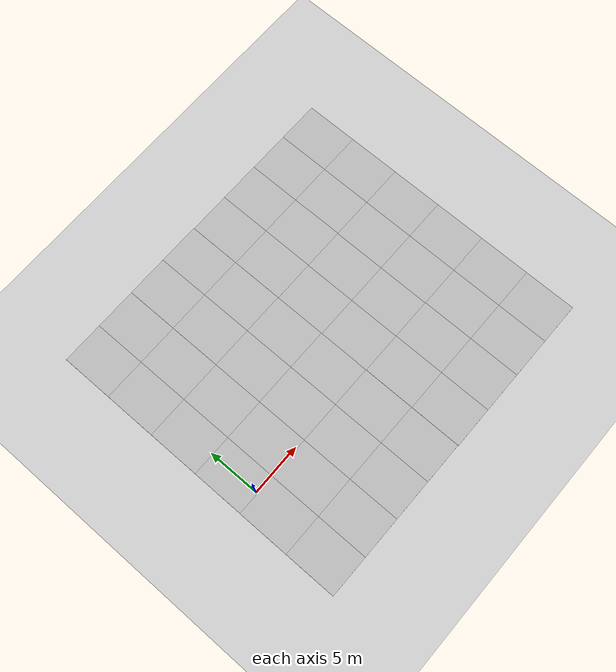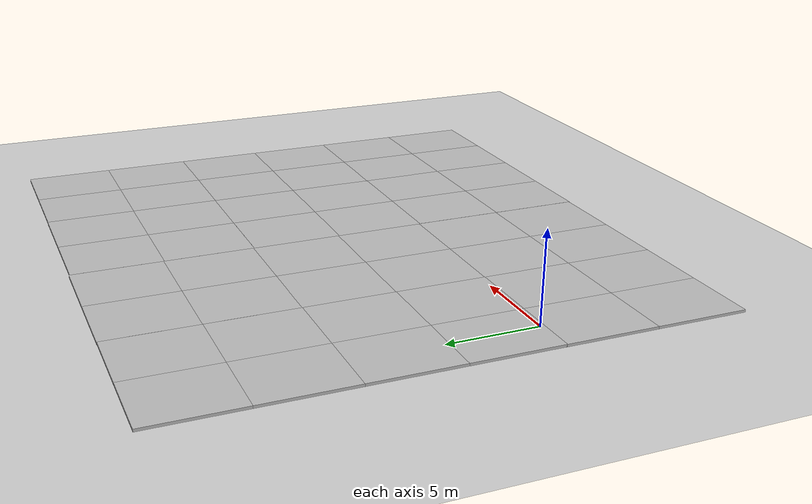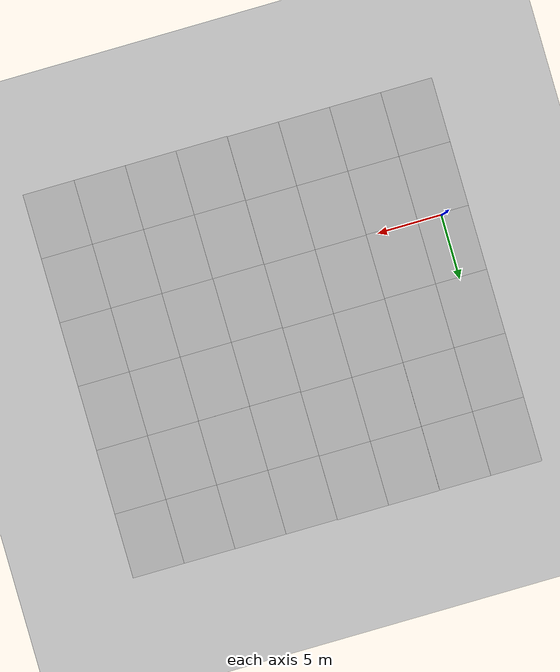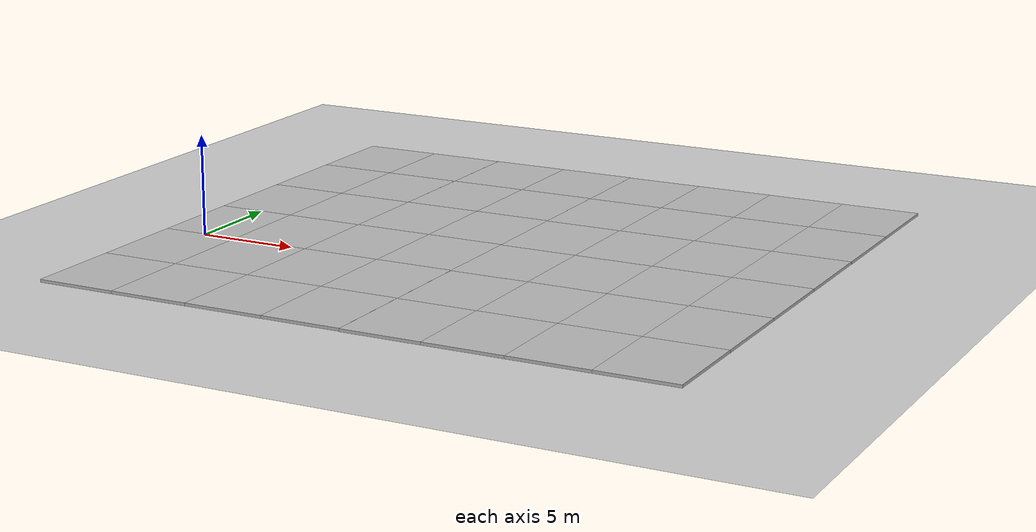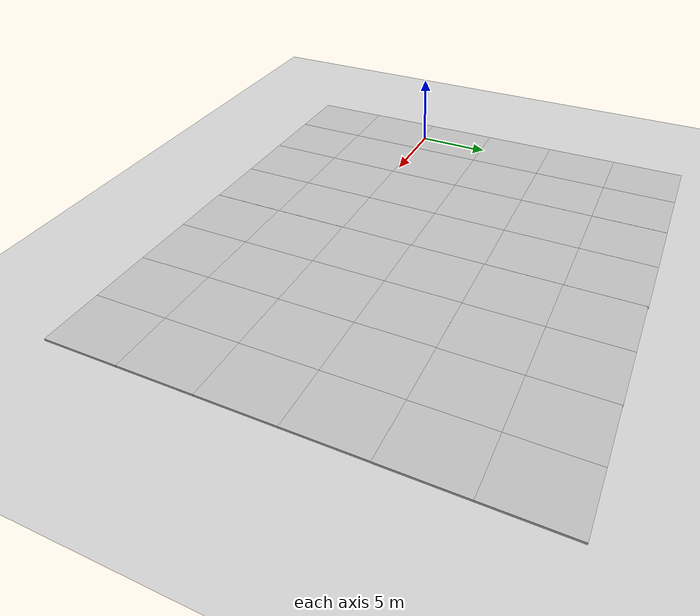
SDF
<sdf version="1.7">
 <world name="default">
  <light name="sun" type="directional">
   <pose>0 0 10 0 -0 0</pose>
   <diffuse>0.8 0.8 0.8 1</diffuse>
   <specular>0.1 0.1 0.1 1</specular>
   <attenuation>
    <range>1000</range>
    <constant>0.9</constant>
    <linear>0.01</linear>
    <quadratic>0.001</quadratic>
   </attenuation>
   <direction>-0.5 0.5 -1</direction>
   <spot><inner_angle>0</inner_angle><outer_angle>0</outer_angle><falloff>0</falloff></spot>
  </light>
  <gravity>0 0 -9.8</gravity>
  <magnetic_field>6e-06 2.3e-05 -4.2e-05</magnetic_field>
  <atmosphere type="adiabatic"/>
  <physics name="default_physics" default="0" type="ode">
   <max_step_size>0.001</max_step_size>
   <real_time_factor>1</real_time_factor>
   <real_time_update_rate>1000</real_time_update_rate>
  </physics>
  <scene><ambient>0.4 0.4 0.4 1</ambient><background>0.7 0.7 0.7 1</background><shadows>1</shadows></scene>
  <spherical_coordinates>
   <surface_model>EARTH_WGS84</surface_model>
   <latitude_deg>0</latitude_deg>
   <longitude_deg>0</longitude_deg>
   <elevation>0</elevation>
   <heading_deg>0</heading_deg>
  </spherical_coordinates>
  <model name="mud_box">
   <static>1</static>
   <link name="link">
    <collision name="collision"><geometry><box><size>8 10 0.2</size></box></geometry></collision>
    <visual name="visual_1">
     <pose>-2 2.5 0 0 -0 0</pose>
     <cast_shadows>0</cast_shadows>
     <geometry><box><size>4 5 0.2</size></box></geometry>
     <material>
      <script>
       <uri>model://mud_box/materials/scripts</uri>
       <uri>model://mud_box/materials/textures</uri>
       <name>vrc/mud</name>
      </script>
     </material>
    </visual>
    <visual name="visual_2">
     <pose>2 2.5 0 0 -0 0</pose>
     <cast_shadows>0</cast_shadows>
     <geometry><box><size>4 5 0.2</size></box></geometry>
     <material>
      <script>
       <uri>model://mud_box/materials/scripts</uri>
       <uri>model://mud_box/materials/textures</uri>
       <name>vrc/mud</name>
      </script>
     </material>
    </visual>
    <visual name="visual_3">
     <pose>2 -2.5 0 0 -0 0</pose>
     <cast_shadows>0</cast_shadows>
     <geometry><box><size>4 5 0.2</size></box></geometry>
     <material>
      <script>
       <uri>model://mud_box/materials/scripts</uri>
       <uri>model://mud_box/materials/textures</uri>
       <name>vrc/mud</name>
      </script>
     </material>
    </visual>
    <visual name="visual_4">
     <pose>-2 -2.5 0 0 -0 0</pose>
     <cast_shadows>0</cast_shadows>
     <geometry><box><size>4 5 0.2</size></box></geometry>
     <material>
      <script>
       <uri>model://mud_box/materials/scripts</uri>
       <uri>model://mud_box/materials/textures</uri>
       <name>vrc/mud</name>
      </script>
     </material>
    </visual>
   </link>
   <pose>9.86832 14.8407 0 0 -0 0</pose>
  </model>
  <model name="mud_box_0">
   <static>1</static>
   <link name="link">
    <collision name="collision"><geometry><box><size>8 10 0.2</size></box></geometry></collision>
    <visual name="visual_1">
     <pose>-2 2.5 0 0 -0 0</pose>
     <cast_shadows>0</cast_shadows>
     <geometry><box><size>4 5 0.2</size></box></geometry>
     <material>
      <script>
       <uri>model://mud_box/materials/scripts</uri>
       <uri>model://mud_box/materials/textures</uri>
       <name>vrc/mud</name>
      </script>
     </material>
    </visual>
    <visual name="visual_2">
     <pose>2 2.5 0 0 -0 0</pose>
     <cast_shadows>0</cast_shadows>
     <geometry><box><size>4 5 0.2</size></box></geometry>
     <material>
      <script>
       <uri>model://mud_box/materials/scripts</uri>
       <uri>model://mud_box/materials/textures</uri>
       <name>vrc/mud</name>
      </script>
     </material>
    </visual>
    <visual name="visual_3">
     <pose>2 -2.5 0 0 -0 0</pose>
     <cast_shadows>0</cast_shadows>
     <geometry><box><size>4 5 0.2</size></box></geometry>
     <material>
      <script>
       <uri>model://mud_box/materials/scripts</uri>
       <uri>model://mud_box/materials/textures</uri>
       <name>vrc/mud</name>
      </script>
     </material>
    </visual>
    <visual name="visual_4">
     <pose>-2 -2.5 0 0 -0 0</pose>
     <cast_shadows>0</cast_shadows>
     <geometry><box><size>4 5 0.2</size></box></geometry>
     <material>
      <script>
       <uri>model://mud_box/materials/scripts</uri>
       <uri>model://mud_box/materials/textures</uri>
       <name>vrc/mud</name>
      </script>
     </material>
    </visual>
   </link>
   <pose>1.86767 4.83104 0 0 -0 0</pose>
  </model>
  <model name="mud_box_1">
   <static>1</static>
   <link name="link">
    <collision name="collision"><geometry><box><size>8 10 0.2</size></box></geometry></collision>
    <visual name="visual_1">
     <pose>-2 2.5 0 0 -0 0</pose>
     <cast_shadows>0</cast_shadows>
     <geometry><box><size>4 5 0.2</size></box></geometry>
     <material>
      <script>
       <uri>model://mud_box/materials/scripts</uri>
       <uri>model://mud_box/materials/textures</uri>
       <name>vrc/mud</name>
      </script>
     </material>
    </visual>
    <visual name="visual_2">
     <pose>2 2.5 0 0 -0 0</pose>
     <cast_shadows>0</cast_shadows>
     <geometry><box><size>4 5 0.2</size></box></geometry>
     <material>
      <script>
       <uri>model://mud_box/materials/scripts</uri>
       <uri>model://mud_box/materials/textures</uri>
       <name>vrc/mud</name>
      </script>
     </material>
    </visual>
    <visual name="visual_3">
     <pose>2 -2.5 0 0 -0 0</pose>
     <cast_shadows>0</cast_shadows>
     <geometry><box><size>4 5 0.2</size></box></geometry>
     <material>
      <script>
       <uri>model://mud_box/materials/scripts</uri>
       <uri>model://mud_box/materials/textures</uri>
       <name>vrc/mud</name>
      </script>
     </material>
    </visual>
    <visual name="visual_4">
     <pose>-2 -2.5 0 0 -0 0</pose>
     <cast_shadows>0</cast_shadows>
     <geometry><box><size>4 5 0.2</size></box></geometry>
     <material>
      <script>
       <uri>model://mud_box/materials/scripts</uri>
       <uri>model://mud_box/materials/textures</uri>
       <name>vrc/mud</name>
      </script>
     </material>
    </visual>
   </link>
   <pose>25.8304 -5.18145 0 0 -0 0</pose>
  </model>
  <model name="mud_box_2">
   <static>1</static>
   <link name="link">
    <collision name="collision"><geometry><box><size>8 10 0.2</size></box></geometry></collision>
    <visual name="visual_1">
     <pose>-2 2.5 0 0 -0 0</pose>
     <cast_shadows>0</cast_shadows>
     <geometry><box><size>4 5 0.2</size></box></geometry>
     <material>
      <script>
       <uri>model://mud_box/materials/scripts</uri>
       <uri>model://mud_box/materials/textures</uri>
       <name>vrc/mud</name>
      </script>
     </material>
    </visual>
    <visual name="visual_2">
     <pose>2 2.5 0 0 -0 0</pose>
     <cast_shadows>0</cast_shadows>
     <geometry><box><size>4 5 0.2</size></box></geometry>
     <material>
      <script>
       <uri>model://mud_box/materials/scripts</uri>
       <uri>model://mud_box/materials/textures</uri>
       <name>vrc/mud</name>
      </script>
     </material>
    </visual>
    <visual name="visual_3">
     <pose>2 -2.5 0 0 -0 0</pose>
     <cast_shadows>0</cast_shadows>
     <geometry><box><size>4 5 0.2</size></box></geometry>
     <material>
      <script>
       <uri>model://mud_box/materials/scripts</uri>
       <uri>model://mud_box/materials/textures</uri>
       <name>vrc/mud</name>
      </script>
     </material>
    </visual>
    <visual name="visual_4">
     <pose>-2 -2.5 0 0 -0 0</pose>
     <cast_shadows>0</cast_shadows>
     <geometry><box><size>4 5 0.2</size></box></geometry>
     <material>
      <script>
       <uri>model://mud_box/materials/scripts</uri>
       <uri>model://mud_box/materials/textures</uri>
       <name>vrc/mud</name>
      </script>
     </material>
    </visual>
   </link>
   <pose>1.85975 -5.14192 0 0 -0 0</pose>
  </model>
  <model name="mud_box_0_clone">
   <static>1</static>
   <link name="link">
    <collision name="collision"><geometry><box><size>8 10 0.2</size></box></geometry></collision>
    <visual name="visual_1">
     <pose>-2 2.5 0 0 -0 0</pose>
     <cast_shadows>0</cast_shadows>
     <geometry><box><size>4 5 0.2</size></box></geometry>
     <material>
      <script>
       <uri>model://mud_box/materials/scripts</uri>
       <uri>model://mud_box/materials/textures</uri>
       <name>vrc/mud</name>
      </script>
     </material>
    </visual>
    <visual name="visual_2">
     <pose>2 2.5 0 0 -0 0</pose>
     <cast_shadows>0</cast_shadows>
     <geometry><box><size>4 5 0.2</size></box></geometry>
     <material>
      <script>
       <uri>model://mud_box/materials/scripts</uri>
       <uri>model://mud_box/materials/textures</uri>
       <name>vrc/mud</name>
      </script>
     </material>
    </visual>
    <visual name="visual_3">
     <pose>2 -2.5 0 0 -0 0</pose>
     <cast_shadows>0</cast_shadows>
     <geometry><box><size>4 5 0.2</size></box></geometry>
     <material>
      <script>
       <uri>model://mud_box/materials/scripts</uri>
       <uri>model://mud_box/materials/textures</uri>
       <name>vrc/mud</name>
      </script>
     </material>
    </visual>
    <visual name="visual_4">
     <pose>-2 -2.5 0 0 -0 0</pose>
     <cast_shadows>0</cast_shadows>
     <geometry><box><size>4 5 0.2</size></box></geometry>
     <material>
      <script>
       <uri>model://mud_box/materials/scripts</uri>
       <uri>model://mud_box/materials/textures</uri>
       <name>vrc/mud</name>
      </script>
     </material>
    </visual>
   </link>
   <pose>9.85757 -5.14216 0 0 -0 0</pose>
  </model>
  <model name="mud_box_0_clone_clone">
   <static>1</static>
   <link name="link">
    <collision name="collision"><geometry><box><size>8 10 0.2</size></box></geometry></collision>
    <visual name="visual_1">
     <pose>-2 2.5 0 0 -0 0</pose>
     <cast_shadows>0</cast_shadows>
     <geometry><box><size>4 5 0.2</size></box></geometry>
     <material>
      <script>
       <uri>model://mud_box/materials/scripts</uri>
       <uri>model://mud_box/materials/textures</uri>
       <name>vrc/mud</name>
      </script>
     </material>
    </visual>
    <visual name="visual_2">
     <pose>2 2.5 0 0 -0 0</pose>
     <cast_shadows>0</cast_shadows>
     <geometry><box><size>4 5 0.2</size></box></geometry>
     <material>
      <script>
       <uri>model://mud_box/materials/scripts</uri>
       <uri>model://mud_box/materials/textures</uri>
       <name>vrc/mud</name>
      </script>
     </material>
    </visual>
    <visual name="visual_3">
     <pose>2 -2.5 0 0 -0 0</pose>
     <cast_shadows>0</cast_shadows>
     <geometry><box><size>4 5 0.2</size></box></geometry>
     <material>
      <script>
       <uri>model://mud_box/materials/scripts</uri>
       <uri>model://mud_box/materials/textures</uri>
       <name>vrc/mud</name>
      </script>
     </material>
    </visual>
    <visual name="visual_4">
     <pose>-2 -2.5 0 0 -0 0</pose>
     <cast_shadows>0</cast_shadows>
     <geometry><box><size>4 5 0.2</size></box></geometry>
     <material>
      <script>
       <uri>model://mud_box/materials/scripts</uri>
       <uri>model://mud_box/materials/textures</uri>
       <name>vrc/mud</name>
      </script>
     </material>
    </visual>
   </link>
   <pose>17.8643 -5.17973 0 0 -0 0</pose>
  </model>
  <model name="mud_box_0_clone_clone_0">
   <static>1</static>
   <link name="link">
    <collision name="collision"><geometry><box><size>8 10 0.2</size></box></geometry></collision>
    <visual name="visual_1">
     <pose>-2 2.5 0 0 -0 0</pose>
     <cast_shadows>0</cast_shadows>
     <geometry><box><size>4 5 0.2</size></box></geometry>
     <material>
      <script>
       <uri>model://mud_box/materials/scripts</uri>
       <uri>model://mud_box/materials/textures</uri>
       <name>vrc/mud</name>
      </script>
     </material>
    </visual>
    <visual name="visual_2">
     <pose>2 2.5 0 0 -0 0</pose>
     <cast_shadows>0</cast_shadows>
     <geometry><box><size>4 5 0.2</size></box></geometry>
     <material>
      <script>
       <uri>model://mud_box/materials/scripts</uri>
       <uri>model://mud_box/materials/textures</uri>
       <name>vrc/mud</name>
      </script>
     </material>
    </visual>
    <visual name="visual_3">
     <pose>2 -2.5 0 0 -0 0</pose>
     <cast_shadows>0</cast_shadows>
     <geometry><box><size>4 5 0.2</size></box></geometry>
     <material>
      <script>
       <uri>model://mud_box/materials/scripts</uri>
       <uri>model://mud_box/materials/textures</uri>
       <name>vrc/mud</name>
      </script>
     </material>
    </visual>
    <visual name="visual_4">
     <pose>-2 -2.5 0 0 -0 0</pose>
     <cast_shadows>0</cast_shadows>
     <geometry><box><size>4 5 0.2</size></box></geometry>
     <material>
      <script>
       <uri>model://mud_box/materials/scripts</uri>
       <uri>model://mud_box/materials/textures</uri>
       <name>vrc/mud</name>
      </script>
     </material>
    </visual>
   </link>
   <pose>17.8432 4.79546 0 0 -0 0</pose>
  </model>
  <model name="mud_box_0_clone_clone_1">
   <static>1</static>
   <link name="link">
    <collision name="collision"><geometry><box><size>8 10 0.2</size></box></geometry></collision>
    <visual name="visual_1">
     <pose>-2 2.5 0 0 -0 0</pose>
     <cast_shadows>0</cast_shadows>
     <geometry><box><size>4 5 0.2</size></box></geometry>
     <material>
      <script>
       <uri>model://mud_box/materials/scripts</uri>
       <uri>model://mud_box/materials/textures</uri>
       <name>vrc/mud</name>
      </script>
     </material>
    </visual>
    <visual name="visual_2">
     <pose>2 2.5 0 0 -0 0</pose>
     <cast_shadows>0</cast_shadows>
     <geometry><box><size>4 5 0.2</size></box></geometry>
     <material>
      <script>
       <uri>model://mud_box/materials/scripts</uri>
       <uri>model://mud_box/materials/textures</uri>
       <name>vrc/mud</name>
      </script>
     </material>
    </visual>
    <visual name="visual_3">
     <pose>2 -2.5 0 0 -0 0</pose>
     <cast_shadows>0</cast_shadows>
     <geometry><box><size>4 5 0.2</size></box></geometry>
     <material>
      <script>
       <uri>model://mud_box/materials/scripts</uri>
       <uri>model://mud_box/materials/textures</uri>
       <name>vrc/mud</name>
      </script>
     </material>
    </visual>
    <visual name="visual_4">
     <pose>-2 -2.5 0 0 -0 0</pose>
     <cast_shadows>0</cast_shadows>
     <geometry><box><size>4 5 0.2</size></box></geometry>
     <material>
      <script>
       <uri>model://mud_box/materials/scripts</uri>
       <uri>model://mud_box/materials/textures</uri>
       <name>vrc/mud</name>
      </script>
     </material>
    </visual>
   </link>
   <pose>25.8322 4.79818 0 0 -0 0</pose>
  </model>
  <model name="mud_box_0_clone_clone_2">
   <static>1</static>
   <link name="link">
    <collision name="collision"><geometry><box><size>8 10 0.2</size></box></geometry></collision>
    <visual name="visual_1">
     <pose>-2 2.5 0 0 -0 0</pose>
     <cast_shadows>0</cast_shadows>
     <geometry><box><size>4 5 0.2</size></box></geometry>
     <material>
      <script>
       <uri>model://mud_box/materials/scripts</uri>
       <uri>model://mud_box/materials/textures</uri>
       <name>vrc/mud</name>
      </script>
     </material>
    </visual>
    <visual name="visual_2">
     <pose>2 2.5 0 0 -0 0</pose>
     <cast_shadows>0</cast_shadows>
     <geometry><box><size>4 5 0.2</size></box></geometry>
     <material>
      <script>
       <uri>model://mud_box/materials/scripts</uri>
       <uri>model://mud_box/materials/textures</uri>
       <name>vrc/mud</name>
      </script>
     </material>
    </visual>
    <visual name="visual_3">
     <pose>2 -2.5 0 0 -0 0</pose>
     <cast_shadows>0</cast_shadows>
     <geometry><box><size>4 5 0.2</size></box></geometry>
     <material>
      <script>
       <uri>model://mud_box/materials/scripts</uri>
       <uri>model://mud_box/materials/textures</uri>
       <name>vrc/mud</name>
      </script>
     </material>
    </visual>
    <visual name="visual_4">
     <pose>-2 -2.5 0 0 -0 0</pose>
     <cast_shadows>0</cast_shadows>
     <geometry><box><size>4 5 0.2</size></box></geometry>
     <material>
      <script>
       <uri>model://mud_box/materials/scripts</uri>
       <uri>model://mud_box/materials/textures</uri>
       <name>vrc/mud</name>
      </script>
     </material>
    </visual>
   </link>
   <pose>1.86503 14.8262 0 0 -0 0</pose>
  </model>
  <model name="mud_box_4">
   <static>1</static>
   <link name="link">
    <collision name="collision"><geometry><box><size>8 10 0.2</size></box></geometry></collision>
    <visual name="visual_1">
     <pose>-2 2.5 0 0 -0 0</pose>
     <cast_shadows>0</cast_shadows>
     <geometry><box><size>4 5 0.2</size></box></geometry>
     <material>
      <script>
       <uri>model://mud_box/materials/scripts</uri>
       <uri>model://mud_box/materials/textures</uri>
       <name>vrc/mud</name>
      </script>
     </material>
    </visual>
    <visual name="visual_2">
     <pose>2 2.5 0 0 -0 0</pose>
     <cast_shadows>0</cast_shadows>
     <geometry><box><size>4 5 0.2</size></box></geometry>
     <material>
      <script>
       <uri>model://mud_box/materials/scripts</uri>
       <uri>model://mud_box/materials/textures</uri>
       <name>vrc/mud</name>
      </script>
     </material>
    </visual>
    <visual name="visual_3">
     <pose>2 -2.5 0 0 -0 0</pose>
     <cast_shadows>0</cast_shadows>
     <geometry><box><size>4 5 0.2</size></box></geometry>
     <material>
      <script>
       <uri>model://mud_box/materials/scripts</uri>
       <uri>model://mud_box/materials/textures</uri>
       <name>vrc/mud</name>
      </script>
     </material>
    </visual>
    <visual name="visual_4">
     <pose>-2 -2.5 0 0 -0 0</pose>
     <cast_shadows>0</cast_shadows>
     <geometry><box><size>4 5 0.2</size></box></geometry>
     <material>
      <script>
       <uri>model://mud_box/materials/scripts</uri>
       <uri>model://mud_box/materials/textures</uri>
       <name>vrc/mud</name>
      </script>
     </material>
    </visual>
   </link>
   <pose>9.86465 4.85433 0 0 -0 0</pose>
  </model>
  <model name="mud_box_3">
   <static>1</static>
   <link name="link">
    <collision name="collision"><geometry><box><size>8 10 0.2</size></box></geometry></collision>
    <visual name="visual_1">
     <pose>-2 2.5 0 0 -0 0</pose>
     <cast_shadows>0</cast_shadows>
     <geometry><box><size>4 5 0.2</size></box></geometry>
     <material>
      <script>
       <uri>model://mud_box/materials/scripts</uri>
       <uri>model://mud_box/materials/textures</uri>
       <name>vrc/mud</name>
      </script>
     </material>
    </visual>
    <visual name="visual_2">
     <pose>2 2.5 0 0 -0 0</pose>
     <cast_shadows>0</cast_shadows>
     <geometry><box><size>4 5 0.2</size></box></geometry>
     <material>
      <script>
       <uri>model://mud_box/materials/scripts</uri>
       <uri>model://mud_box/materials/textures</uri>
       <name>vrc/mud</name>
      </script>
     </material>
    </visual>
    <visual name="visual_3">
     <pose>2 -2.5 0 0 -0 0</pose>
     <cast_shadows>0</cast_shadows>
     <geometry><box><size>4 5 0.2</size></box></geometry>
     <material>
      <script>
       <uri>model://mud_box/materials/scripts</uri>
       <uri>model://mud_box/materials/textures</uri>
       <name>vrc/mud</name>
      </script>
     </material>
    </visual>
    <visual name="visual_4">
     <pose>-2 -2.5 0 0 -0 0</pose>
     <cast_shadows>0</cast_shadows>
     <geometry><box><size>4 5 0.2</size></box></geometry>
     <material>
      <script>
       <uri>model://mud_box/materials/scripts</uri>
       <uri>model://mud_box/materials/textures</uri>
       <name>vrc/mud</name>
      </script>
     </material>
    </visual>
   </link>
   <pose>17.8698 14.7961 0 0 -0 0</pose>
  </model>
  <model name="mud_box_5">
   <static>1</static>
   <link name="link">
    <collision name="collision"><geometry><box><size>8 10 0.2</size></box></geometry></collision>
    <visual name="visual_1">
     <pose>-2 2.5 0 0 -0 0</pose>
     <cast_shadows>0</cast_shadows>
     <geometry><box><size>4 5 0.2</size></box></geometry>
     <material>
      <script>
       <uri>model://mud_box/materials/scripts</uri>
       <uri>model://mud_box/materials/textures</uri>
       <name>vrc/mud</name>
      </script>
     </material>
    </visual>
    <visual name="visual_2">
     <pose>2 2.5 0 0 -0 0</pose>
     <cast_shadows>0</cast_shadows>
     <geometry><box><size>4 5 0.2</size></box></geometry>
     <material>
      <script>
       <uri>model://mud_box/materials/scripts</uri>
       <uri>model://mud_box/materials/textures</uri>
       <name>vrc/mud</name>
      </script>
     </material>
    </visual>
    <visual name="visual_3">
     <pose>2 -2.5 0 0 -0 0</pose>
     <cast_shadows>0</cast_shadows>
     <geometry><box><size>4 5 0.2</size></box></geometry>
     <material>
      <script>
       <uri>model://mud_box/materials/scripts</uri>
       <uri>model://mud_box/materials/textures</uri>
       <name>vrc/mud</name>
      </script>
     </material>
    </visual>
    <visual name="visual_4">
     <pose>-2 -2.5 0 0 -0 0</pose>
     <cast_shadows>0</cast_shadows>
     <geometry><box><size>4 5 0.2</size></box></geometry>
     <material>
      <script>
       <uri>model://mud_box/materials/scripts</uri>
       <uri>model://mud_box/materials/textures</uri>
       <name>vrc/mud</name>
      </script>
     </material>
    </visual>
   </link>
   <pose>25.8401 14.7827 0 0 -0 0</pose>
  </model>
  <model name="ground_plane">
   <static>1</static>
   <link name="link">
    <collision name="collision">
     <geometry><plane><normal>0 0 1</normal><size>100 100</size></plane></geometry>
     <surface>
      <contact><collide_bitmask>65535</collide_bitmask></contact>
      <friction><ode><mu>100</mu><mu2>50</mu2></ode></friction>
     </surface>
    </collision>
    <visual name="visual">
     <cast_shadows>0</cast_shadows>
     <geometry><plane><normal>0 0 1</normal><size>100 100</size></plane></geometry>
     <material>
      <script><uri>file://media/materials/scripts/gazebo.material</uri><name>Gazebo/Grey</name></script>
     </material>
    </visual>
   </link>
  </model>
  <light name="user_directional_light_0" type="directional">
   <pose>16.5907 7.06229 1 0 -0 0</pose>
   <diffuse>0.5 0.5 0.5 1</diffuse>
   <specular>0.1 0.1 0.1 1</specular>
   <direction>0.1 0.1 -0.9</direction>
   <attenuation>
    <range>20</range>
    <constant>0.5</constant>
    <linear>0.01</linear>
    <quadratic>0.001</quadratic>
   </attenuation>
  </light>
  <light name="user_directional_light_1" type="directional">
   <pose>62.1549 25.2974 1 0 -0 0</pose>
   <diffuse>0.5 0.5 0.5 1</diffuse>
   <specular>0.1 0.1 0.1 1</specular>
   <direction>0.1 0.1 -0.9</direction>
   <attenuation>
    <range>20</range>
    <constant>0.5</constant>
    <linear>0.01</linear>
    <quadratic>0.001</quadratic>
   </attenuation>
  </light>
  <light name="user_directional_light_2" type="directional">
   <pose>-2.2618 17.7557 1 0 -0 0</pose>
   <diffuse>0.5 0.5 0.5 1</diffuse>
   <specular>0.1 0.1 0.1 1</specular>
   <direction>0.1 0.1 -0.9</direction>
   <attenuation>
    <range>20</range>
    <constant>0.5</constant>
    <linear>0.01</linear>
    <quadratic>0.001</quadratic>
   </attenuation>
  </light>
  <light name="user_directional_light_3" type="directional">
   <pose>-1.56413 -8.15877 1 0 -0 0</pose>
   <diffuse>0.5 0.5 0.5 1</diffuse>
   <specular>0.1 0.1 0.1 1</specular>
   <direction>0.1 0.1 -0.9</direction>
   <attenuation>
    <range>20</range>
    <constant>0.5</constant>
    <linear>0.01</linear>
    <quadratic>0.001</quadratic>
   </attenuation>
  </light>
  <light name="user_directional_light_4" type="directional">
   <pose>36.3598 -7.17266 1 0 -0 0</pose>
   <diffuse>0.5 0.5 0.5 1</diffuse>
   <specular>0.1 0.1 0.1 1</specular>
   <direction>0.1 0.1 -0.9</direction>
   <attenuation>
    <range>20</range>
    <constant>0.5</constant>
    <linear>0.01</linear>
    <quadratic>0.001</quadratic>
   </attenuation>
  </light>
  <light name="user_directional_light_5" type="directional">
   <pose>40.5495 20.7889 1 0 -0 0</pose>
   <diffuse>0.5 0.5 0.5 1</diffuse>
   <specular>0.1 0.1 0.1 1</specular>
   <direction>0.1 0.1 -0.9</direction>
   <attenuation>
    <range>20</range>
    <constant>0.5</constant>
    <linear>0.01</linear>
    <quadratic>0.001</quadratic>
   </attenuation>
  </light>
 </world>
</sdf>
